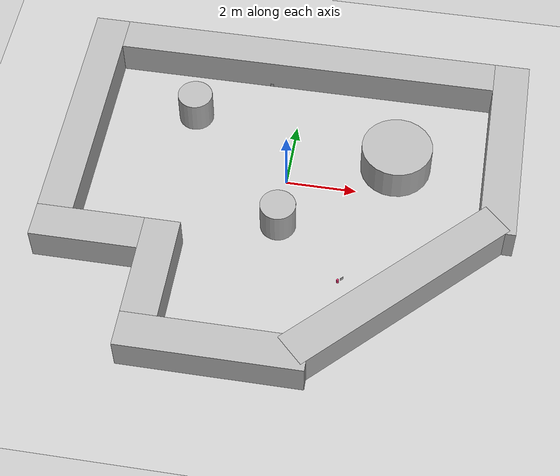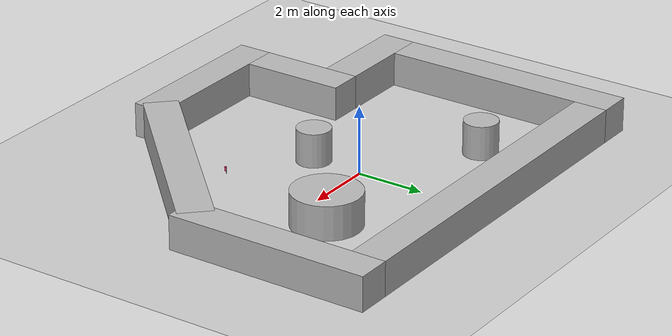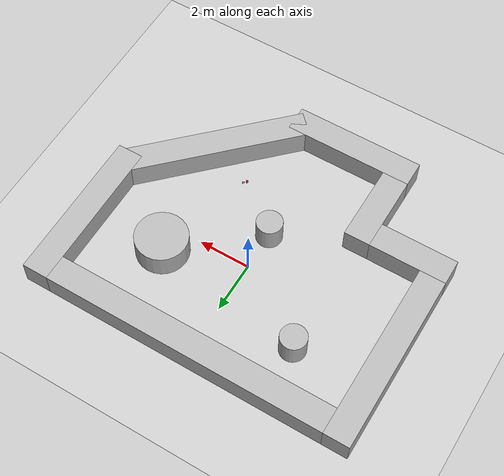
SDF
<?xml version="1.0" ?>
<sdf version="1.4">
	<world name="default">
		<!-- A global light source -->
		<light type="directional" name="sun">
			<cast_shadows>true</cast_shadows>
			<pose>0 0 10 0 0 0</pose>
			<diffuse>0.8 0.8 0.8 1</diffuse>
			<specular>0.2 0.2 0.2 1</specular>
			<attenuation>
				<range>1000</range>
				<constant>0.9</constant>
				<linear>0.01</linear>
				<quadratic>0.001</quadratic>
			</attenuation>
			<direction>0.5 0.2 -0.9</direction>
		</light>
		<!-- A ground plane -->
		<include>
			<uri>model://ground_plane</uri>
		</include>
		<include>
			<uri>model://apriltags</uri>
		</include>

		<scene>
			<sky>
				<clouds>
					<speed>12</speed>
				</clouds>
			</sky>
		</scene>
		<model name="obstacles">
			<static>true</static>
			<pose>0 0 0 0 0 0</pose>
			<link name="box_1">
				<pose>-3 -4 0.5 0 0 0</pose>
				<collision name="collision">
					<geometry>
						<box>
							<size>1 3 1</size>
						</box>
					</geometry>
				</collision>
				<visual name="visual">
					<geometry>
						<box>
							<size>1 3 1</size>
						</box>
					</geometry>
					<material>
						<script>Gazebo/WoodPallet</script>
					</material>
				</visual>
			</link>
			<link name="box_2">
				<pose>6 1.5 0.5 0 0 0</pose>
				<collision name="collision">
					<geometry>
						<box>
							<size>1 6 1</size>
						</box>
					</geometry>
				</collision>
				<visual name="visual">
					<geometry>
						<box>
							<size>1 6 1</size>
						</box>
					</geometry>
					<material>
						<script>Gazebo/WoodPallet</script>
					</material>
				</visual>
			</link>
			<link name="box_3">
				<pose>-5 -3 0.5 0 0 0</pose>
				<collision name="collision">
					<geometry>
						<box>
							<size>3 1 1</size>
						</box>
					</geometry>
				</collision>
				<visual name="visual">
					<geometry>
						<box>
							<size>3 1 1</size>
						</box>
					</geometry>
					<material>
						<script>Gazebo/WoodPallet</script>
					</material>
				</visual>
			</link>
			<link name="box_4">
				<pose>0 4 0.5 0 0 0</pose>
				<collision name="collision">
					<geometry>
						<box>
							<size>11 1 1</size>
						</box>
					</geometry>
				</collision>
				<visual name="visual">
					<geometry>
						<box>
							<size>11 1 1</size>
						</box>
					</geometry>
					<material>
						<script>Gazebo/WoodPallet</script>
					</material>
				</visual>
			</link>
			<link name="box_5">
				<pose>3.5 -3.5 0.5 0 0 0.785</pose>
				<collision name="collision">
					<geometry>
						<box>
							<size>7 1 1</size>
						</box>
					</geometry>
				</collision>
				<visual name="visual">
					<geometry>
						<box>
							<size>7 1 1</size>
						</box>
					</geometry>
					<material>
						<script>Gazebo/WoodPallet</script>
					</material>
				</visual>
			</link>
			<link name="box_6">
				<pose>-1 -6 0.5 0 0 0</pose>
				<collision name="collision">
					<geometry>
						<box>
							<size>5 1 1</size>
						</box>
					</geometry>
				</collision>
				<visual name="visual">
					<geometry>
						<box>
							<size>5 1 1</size>
						</box>
					</geometry>
					<material>
						<script>Gazebo/WoodPallet</script>
					</material>
				</visual>
			</link>
			<link name="box_7">
				<pose>-6 1 0.5 0 0 0</pose>
				<collision name="collision">
					<geometry>
						<box>
							<size>1 7 1</size>
						</box>
					</geometry>
				</collision>
				<visual name="visual">
					<geometry>
						<box>
							<size>1 7 1</size>
						</box>
					</geometry>
					<material>
						<script>Gazebo/WoodPallet</script>
					</material>
				</visual>
			</link>

			<link name="cyl_1">
				<pose>0 -1.5 0.5 0 0 0</pose>
				<collision name="collision">
					<geometry>
						<cylinder>
							<radius>0.5</radius>
							<length>1.0</length>
						</cylinder>
					</geometry>
				</collision>
				<visual name="visual">
					<geometry>
						<cylinder>
							<radius>0.5</radius>
							<length>1.0</length>
						</cylinder>
					</geometry>
					<material>
						<script>Gazebo/WoodPallet</script>
					</material>
				</visual>
			</link>
			<link name="cyl_2">
			<pose>-3 2 0.5 0 0 0</pose>
				<collision name="collision">
					<geometry>
						<cylinder>
							<radius>0.5</radius>
							<length>1.0</length>
						</cylinder>
					</geometry>
				</collision>
				<visual name="visual">
					<geometry>
						<cylinder>
							<radius>0.5</radius>
							<length>1.0</length>
						</cylinder>
					</geometry>
					<material>
						<script>Gazebo/WoodPallet</script>
					</material>
				</visual>
			</link>
			<link name="cyl_3">
				<pose>3 1 0.5 0 0 0</pose>
				<collision name="collision">
					<geometry>
						<cylinder>
							<radius>1.0</radius>
							<length>1.0</length>
						</cylinder>
					</geometry>
				</collision>
				<visual name="visual">
					<geometry>
						<cylinder>
							<radius>1.0</radius>
							<length>1.0</length>
						</cylinder>
					</geometry>
					<material>
						<script>Gazebo/WoodPallet</script>
					</material>
				</visual>
			</link>
		</model>

		<model name="can">
			<pose>1.9 -3.1 0.06 0 0 0</pose>
			<static>false</static>
			<link name="can">
				<visual name="can_visual">
					<cast_shadows>true</cast_shadows>
					<geometry>
						<cylinder>
							<radius>0.033</radius>
							<length>0.12</length>
						</cylinder>
					</geometry>
					<material>
						<ambient>0.95 0.19 0.44 1.0</ambient>
						<diffuse>0.95 0.19 0.44 1.0</diffuse>
						<specular>1.0 1.0 1.0 0.1</specular>
						<emissive>0.95 0.19 0.44 1.0</emissive>
					</material>
				</visual>
				<collision name="can_collision">
					<geometry>
						<cylinder>
							<radius>0.033</radius>
							<length>0.12</length>
						</cylinder>
					</geometry>
					<surface>
						<friction>
							<ode>
								<mu>100</mu>
								<mu2>50</mu2>
							</ode>
						</friction>
					</surface>
				</collision>
			</link>

		</model>
	</world>
</sdf>

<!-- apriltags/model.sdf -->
<sdf version="1.4">
	<model name="apriltags">
		<pose>0 0 0 0 0 0</pose>
		<static>true</static>
		<link name="a_0">
			<pose>2 -3 0.05 0 0 2.35</pose>
			<collision name="a_0_collision">
				<geometry>
					<box>
						<size>0.01 0.1 0.1</size>
					</box>
				</geometry>
				<surface>
					<friction>
						<ode>
							<mu>100</mu>
							<mu2>50</mu2>
						</ode>
					</friction>
				</surface>
			</collision>
			<visual name="a_0_visual">
				<cast_shadows>false</cast_shadows>
				<geometry>
					<box>
						<size>0.01 0.1 0.1</size>
					</box>
				</geometry>
				<material>
					<script>
						<uri>model://apriltags/materials/scripts</uri>
						<uri>model://apriltags/materials/textures</uri>
						<name>a_0/Image</name>
					</script>
				</material>
			</visual>
		</link>
		<link name="a_1">
			<pose>-1 3.5 0.05 0 0 1.5708</pose>
			<collision name="a_1_collision">
				<geometry>
					<box>
						<size>0.01 0.1 0.1</size>
					</box>
				</geometry>
				<surface>
					<friction>
						<ode>
							<mu>100</mu>
							<mu2>50</mu2>
						</ode>
					</friction>
				</surface>
			</collision>
			<visual name="a_1_visual">
				<cast_shadows>false</cast_shadows>
				<geometry>
					<box>
						<size>0.01 0.1 0.1</size>
					</box>
				</geometry>
				<material>
					<script>
						<uri>model://apriltags/materials/scripts</uri>
						<uri>model://apriltags/materials/textures</uri>
						<name>a_1/Image</name>
					</script>
				</material>
			</visual>
		</link>
	</model>

</sdf>
